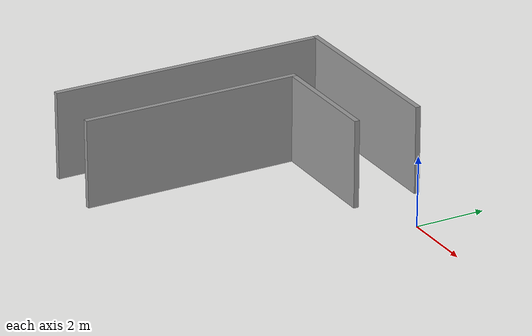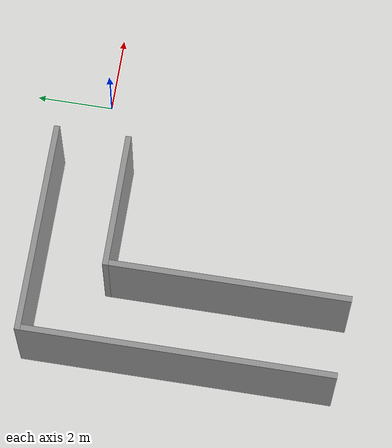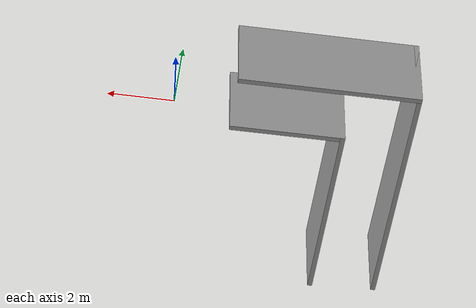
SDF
<?xml version='1.0'?>
<sdf version='1.7'>
  <model name='L_model'>
    <pose>-3.6264 -2.93471 0 0 -0 0</pose>
    <link name='Wall_11'>
      <collision name='Wall_11_Collision'>
        <geometry>
          <box>
            <size>8 0.15 2.5</size>
          </box>
        </geometry>
        <pose>0 0 1.25 0 -0 0</pose>
      </collision>
      <visual name='Wall_11_Visual'>
        <pose>0 0 1.25 0 -0 0</pose>
        <geometry>
          <box>
            <size>8 0.15 2.5</size>
          </box>
        </geometry>
        <material>
          <script>
            <uri>file://media/materials/scripts/gazebo.material</uri>
            <name>Gazebo/Grey</name>
          </script>
          <ambient>1 1 1 1</ambient>
        </material>
        <meta>
          <layer>0</layer>
        </meta>
      </visual>
      <pose>-3.5514 0.05 0 0 -0 1.5708</pose>
    </link>
    <link name='Wall_12'>
      <collision name='Wall_12_Collision'>
        <geometry>
          <box>
            <size>5.5 0.15 2.5</size>
          </box>
        </geometry>
        <pose>0 0 1.25 0 -0 0</pose>
      </collision>
      <visual name='Wall_12_Visual'>
        <pose>0 0 1.25 0 -0 0</pose>
        <geometry>
          <box>
            <size>5.5 0.15 2.5</size>
          </box>
        </geometry>
        <material>
          <script>
            <uri>file://media/materials/scripts/gazebo.material</uri>
            <name>Gazebo/Grey</name>
          </script>
          <ambient>1 1 1 1</ambient>
        </material>
        <meta>
          <layer>0</layer>
        </meta>
      </visual>
      <pose>-0.876399 3.975 0 0 -0 0</pose>
    </link>
    <link name='Wall_14'>
      <collision name='Wall_14_Collision'>
        <geometry>
          <box>
            <size>3.5 0.15 2.5</size>
          </box>
        </geometry>
        <pose>0 0 1.25 0 -0 0</pose>
      </collision>
      <visual name='Wall_14_Visual'>
        <pose>0 0 1.25 0 -0 0</pose>
        <geometry>
          <box>
            <size>3.5 0.15 2.5</size>
          </box>
        </geometry>
        <material>
          <script>
            <uri>file://media/materials/scripts/gazebo.material</uri>
            <name>Gazebo/Grey</name>
          </script>
          <ambient>1 1 1 1</ambient>
        </material>
        <meta>
          <layer>0</layer>
        </meta>
      </visual>
      <pose>0.123601 2.125 0 0 -0 3.14159</pose>
    </link>
    <link name='Wall_15'>
      <collision name='Wall_15_Collision'>
        <geometry>
          <box>
            <size>6.25 0.15 2.5</size>
          </box>
        </geometry>
        <pose>0 0 1.25 0 -0 0</pose>
      </collision>
      <visual name='Wall_15_Visual'>
        <pose>0 0 1.25 0 -0 0</pose>
        <geometry>
          <box>
            <size>6.25 0.15 2.5</size>
          </box>
        </geometry>
        <material>
          <script>
            <uri>file://media/materials/scripts/gazebo.material</uri>
            <name>Gazebo/Grey</name>
          </script>
          <ambient>1 1 1 1</ambient>
        </material>
        <meta>
          <layer>0</layer>
        </meta>
      </visual>
      <pose>-1.5514 -0.925 0 0 -0 -1.5708</pose>
    </link>
    <static>1</static>
  </model>
</sdf>
